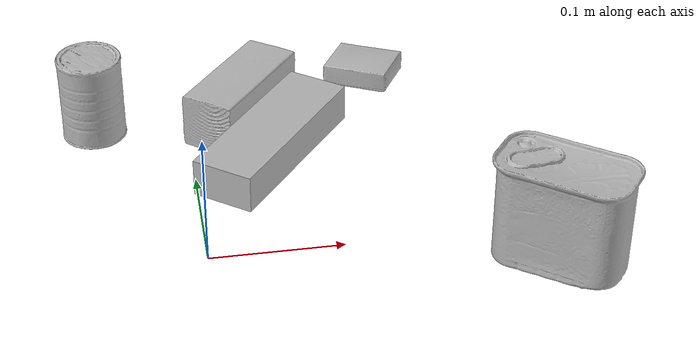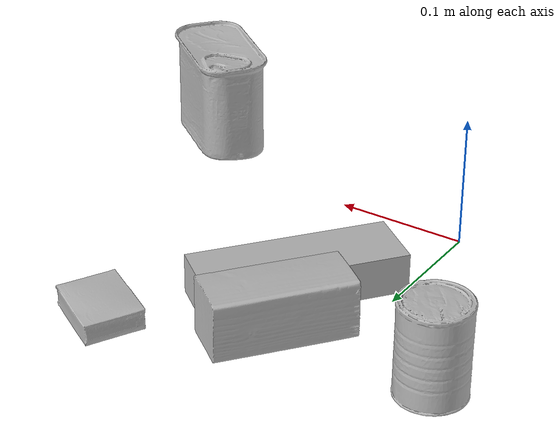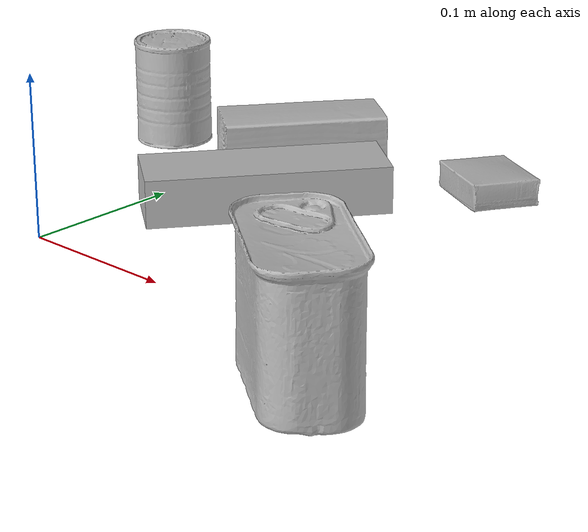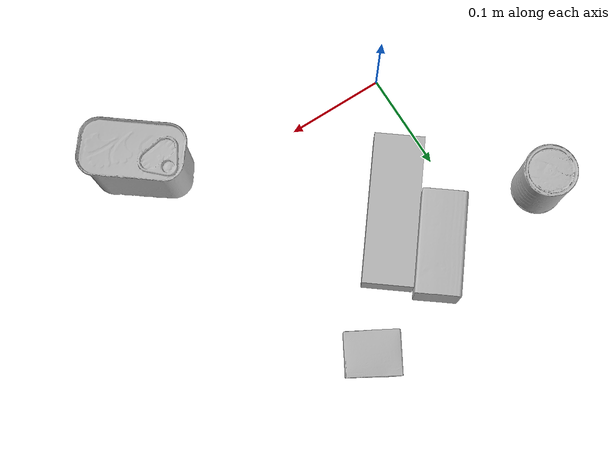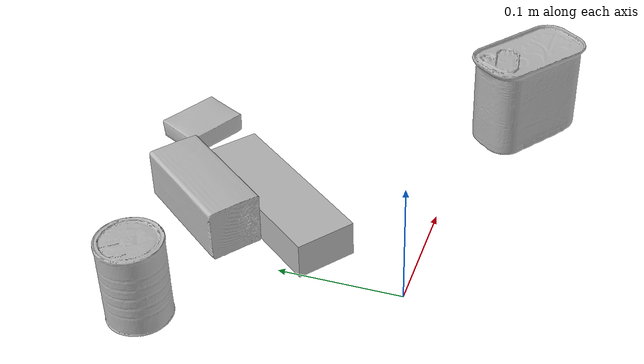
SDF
<sdf version="1.4">
  <world name="default">
    <light name="light1" type="point">
      <pose>0 0 1 0 0 0</pose>
      <diffuse>3 3 3 1</diffuse>
      <specular>3 3 3 1</specular>
    </light>
    <light name="light2" type="point">
      <pose>0 0.5 2 0 0 0</pose>
      <diffuse>1 1 1 1</diffuse>
      <specular>1 1 1 1</specular>
    </light>
    <light name="light3" type="point">
      <pose>0 0.5 2 0 0 0</pose>
      <diffuse>3 3 3 1</diffuse>
      <specular>3 3 3 1</specular>
    </light>
    <scene>
      <ambient>0.7 0.7 0.7</ambient>
    </scene>
    <model name="box1">
      <link name="link_box1">
        <collision name="default">
          <geometry>
            <mesh>
              <uri>model://pudding_box/collision_meshes/collision.obj</uri>
              <scale>0.5 0.5 0.5</scale>
            </mesh>
          </geometry>
          <surface>
            <friction>
              <ode>
                <mu>0.5</mu>
                <mu2>0.5</mu2>
              </ode>
            </friction>
          <contact>
        <ode>
            <max_vel>0</max_vel>
            <min_depth>0.0001</min_depth>
            <kp>1e8</kp>
        </ode>
    </contact></surface>
        </collision>
        <visual name="default">
          <geometry>
            <mesh>
              <uri>model://pudding_box/visual_meshes/visual.dae</uri>
              <scale>0.5 0.5 0.5</scale>
            </mesh>
          </geometry>
        </visual>
        <inertial>
          <mass>0.0642586499452591</mass>
          <pose>0.00024474109522998333 0.00040339428232982755 -0.0002594413817860186 0.005213101302141142 -0.006603800581388343 0.020079827019462423</pose>
          <inertia>
            <ixx>1.8160274e-05</ixx>
            <iyy>1.221836e-05</iyy>
            <izz>2.6818392e-05</izz>
            <ixy>0</ixy>
            <ixz>0</ixz>
            <iyz>0</iyz>
          </inertia>
        </inertial>
      </link>
      <pose>0.1546049416065216 0.2314094454050064 0.00986290443688631 0.022348104127426813 -0.011392099737572709 -2.087727642886503</pose>
    </model>
    <model name="box2">
      <link name="link_box2">
        <collision name="default">
          <geometry>
            <mesh>
              <uri>model://wood_block/collision_meshes/collision.obj</uri>
              <scale>0.5 0.5 0.5</scale>
            </mesh>
          </geometry>
          <surface>
            <friction>
              <ode>
                <mu>0.5</mu>
                <mu2>0.5</mu2>
              </ode>
            </friction>
          <contact>
        <ode>
            <max_vel>0</max_vel>
            <min_depth>0.0001</min_depth>
            <kp>1e8</kp>
        </ode>
    </contact></surface>
        </collision>
        <visual name="default">
          <geometry>
            <mesh>
              <uri>model://wood_block/visual_meshes/visual.dae</uri>
              <scale>0.5 0.5 0.5</scale>
            </mesh>
          </geometry>
        </visual>
        <inertial>
          <mass>0.2432606816291809</mass>
          <pose>-2.9066577553749084e-06 -0.000285404734313488 0.00013204290007706732 -0.0522103103121059 -0.005192696448147362 -0.0068613788455752145</pose>
          <inertia>
            <ixx>8.1379905e-05</ixx>
            <iyy>0.0002570791</iyy>
            <izz>0.00025611752</izz>
            <ixy>0</ixy>
            <ixz>0</ixz>
            <iyz>0</iyz>
          </inertia>
        </inertial>
      </link>
      <pose>0.044585201889276505 0.1791166216135025 0.022629261016845703 -0.005208369648920491 0.005718708418921242 -2.225728102248432</pose>
    </model>
    <model name="box3">
      <link name="link_box3">
        <collision name="default">
          <geometry>
            <mesh>
              <uri>model://jenga/collision_meshes/collision.obj</uri>
              <scale>1.0 1.0 1.0</scale>
            </mesh>
          </geometry>
          <surface>
            <friction>
              <ode>
                <mu>0.5</mu>
                <mu2>0.5</mu2>
              </ode>
            </friction>
          <contact>
        <ode>
            <max_vel>0</max_vel>
            <min_depth>0.0001</min_depth>
            <kp>1e8</kp>
        </ode>
    </contact></surface>
        </collision>
        <visual name="default">
          <geometry>
            <mesh>
              <uri>model://jenga/visual_meshes/visual.dae</uri>
              <scale>1.0 1.0 1.0</scale>
            </mesh>
          </geometry>
        </visual>
        <inertial>
          <mass>0.20405839383602142</mass>
          <pose>-2.502855807051674e-07 -0.00010250010382151231 -4.0923401684267446e-05 0.0 -7.342155186052628e-07 0.0</pose>
          <inertia>
            <ixx>5.6467907e-05</ixx>
            <iyy>0.000382625</iyy>
            <izz>0.00040848472</izz>
            <ixy>0</ixy>
            <ixz>0</ixz>
            <iyz>0</iyz>
          </inertia>
        </inertial>
      </link>
      <pose>0.06303831934928894 0.125613272190094 0.014999995939433575 -1.8471405148758582e-09 9.58089932721776e-10 0.9128780546116836</pose>
    </model>
    <model name="can1">
      <link name="link_can1">
        <collision name="default">
          <geometry>
            <mesh>
              <uri>model://potted_meat_can/collision_meshes/collision.obj</uri>
              <scale>1.0 1.0 1.0</scale>
            </mesh>
          </geometry>
          <surface>
            <friction>
              <ode>
                <mu>0.5</mu>
                <mu2>0.5</mu2>
              </ode>
            </friction>
          <contact>
        <ode>
            <max_vel>0</max_vel>
            <min_depth>0.0001</min_depth>
            <kp>1e8</kp>
        </ode>
    </contact></surface>
        </collision>
        <visual name="default">
          <geometry>
            <mesh>
              <uri>model://potted_meat_can/visual_meshes/visual.dae</uri>
              <scale>1.0 1.0 1.0</scale>
            </mesh>
          </geometry>
        </visual>
        <inertial>
          <mass>0.4665880799293518</mass>
          <pose>0.0002288814284838736 -5.989112105453387e-05 -0.0006367449532262981 -0.028093382538733707 -0.007232605550223235 0.01540626728411476</pose>
          <inertia>
            <ixx>0.0006002166</ixx>
            <iyy>0.0003646772</iyy>
            <izz>0.00043654343</izz>
            <ixy>0</ixy>
            <ixz>0</ixz>
            <iyz>0</iyz>
          </inertia>
        </inertial>
      </link>
      <pose>0.24733319878578186 -0.04302249103784561 0.04212800785899162 -7.664555739555849e-08 -2.543668056194576e-07 -2.2314374552139653</pose>
    </model>
    <model name="can2">
      <link name="link_can2">
        <collision name="default">
          <geometry>
            <mesh>
              <uri>model://master_chef_can/collision_meshes/collision.obj</uri>
              <scale>0.5 0.5 0.5</scale>
            </mesh>
          </geometry>
          <surface>
            <friction>
              <ode>
                <mu>0.5</mu>
                <mu2>0.5</mu2>
              </ode>
            </friction>
          <contact>
        <ode>
            <max_vel>0</max_vel>
            <min_depth>0.0001</min_depth>
            <kp>1e8</kp>
        </ode>
    </contact></surface>
        </collision>
        <visual name="default">
          <geometry>
            <mesh>
              <uri>model://master_chef_can/visual_meshes/visual.dae</uri>
              <scale>0.5 0.5 0.5</scale>
            </mesh>
          </geometry>
        </visual>
        <inertial>
          <mass>0.1648906171321869</mass>
          <pose>-4.661964703700505e-05 1.3926853625889635e-07 -5.079993206891231e-05 -0.0017995099244119924 0.0006479308957776391 -0.6102586503741109</pose>
          <inertia>
            <ixx>9.677961e-05</ixx>
            <iyy>9.606731e-05</iyy>
            <izz>5.3478136e-05</izz>
            <ixy>0</ixy>
            <ixz>0</ixz>
            <iyz>0</iyz>
          </inertia>
        </inertial>
      </link>
      <pose>-0.07382693141698837 0.1801263689994812 0.035301998257637024 -1.1725873198017794e-06 -1.1413632799122721e-06 2.7286380022044847</pose>
    </model>
  <physics type="ode">
      <max_contacts>50</max_contacts>
      <ode>
        <solver>
          <type>quick</type>
          <iters>75</iters>
        </solver>
        <constraints>
          <contact_max_correcting_vel>0</contact_max_correcting_vel>
          <contact_surface_layer>0</contact_surface_layer>
        </constraints>
      </ode>
    </physics></world>
</sdf>
